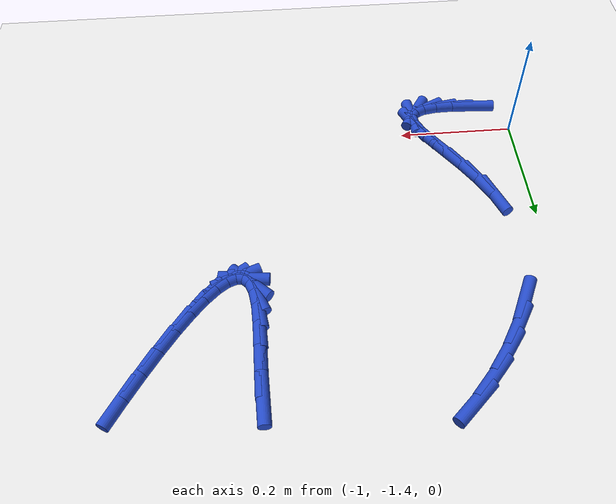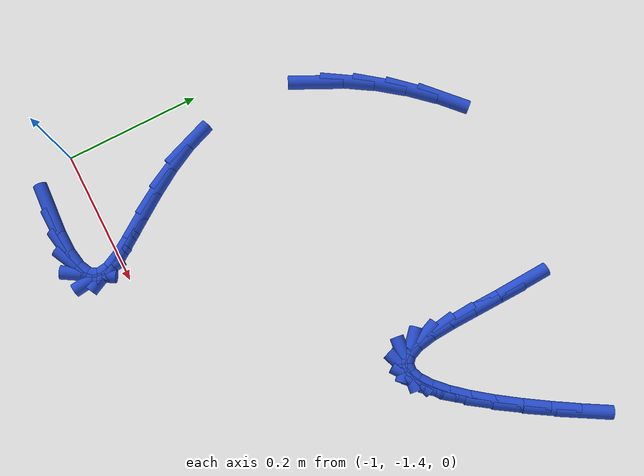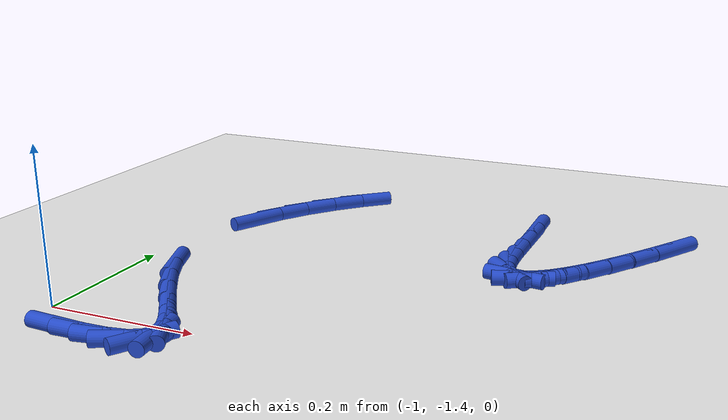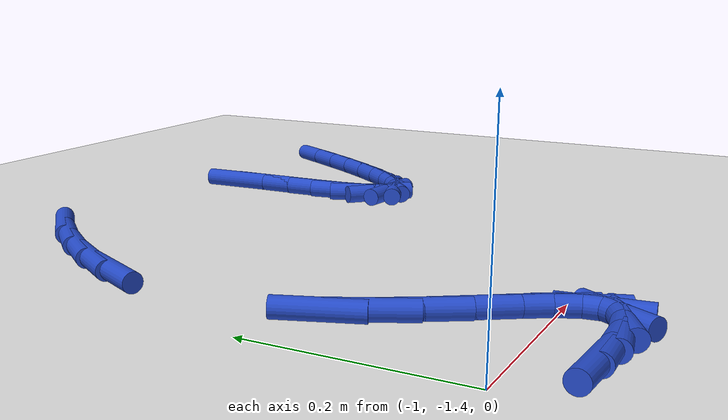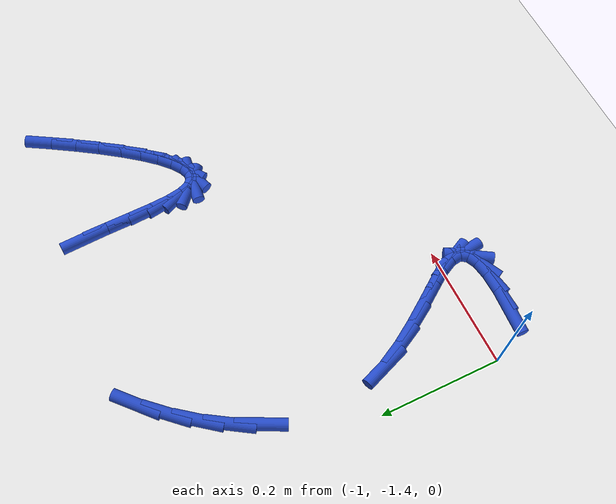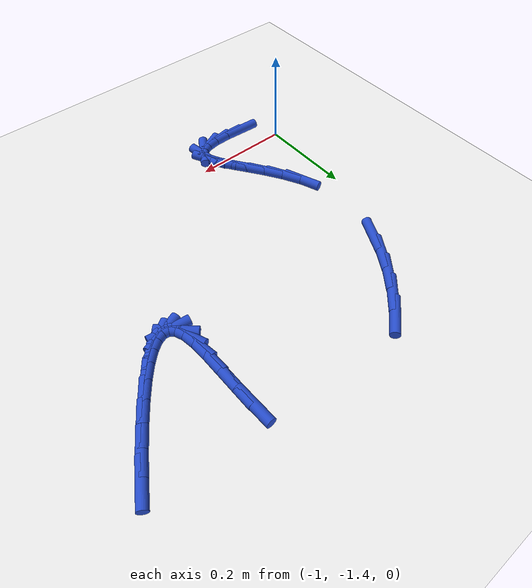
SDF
<sdf version="1.6">
 <world name="default">
  <model name="ground_plane">
   <static>1</static>
   <link name="link">
    <collision name="collision">
     <geometry><plane><normal>0 0 1</normal><size>100 100</size></plane></geometry>
     <surface><friction><ode><mu>100</mu><mu2>50</mu2></ode></friction></surface>
    </collision>
    <visual name="visual">
     <cast_shadows>0</cast_shadows>
     <geometry><plane><normal>0 0 1</normal><size>100 100</size></plane></geometry>
     <material>
      <script><uri>file://media/materials/scripts/gazebo.material</uri><name>Gazebo/WhiteGlow</name></script>
     </material>
    </visual>
   </link>
  </model>
  <model name="line">
   <link name="link_207">
    <pose>-0.9410554550008855 -1.4574055272270798 0.01 0 1.57 -0.06492393238056192</pose>
    <collision name="collision">
     <geometry><cylinder><radius>0.01</radius><length>0.08</length></cylinder></geometry>
    </collision>
    <visual name="visual">
     <material>
      <script><name>Gazebo/Blue</name><uri>file://media/materials/scripts/gazebo.material</uri></script>
     </material>
     <geometry><cylinder><radius>0.01</radius><length>0.08</length></cylinder></geometry>
    </visual>
   </link>
   <link name="link_208">
    <pose>-0.9035816386006766 -1.4598418989086477 0.01 0 1.57 0.019446015192767736</pose>
    <collision name="collision">
     <geometry><cylinder><radius>0.01</radius><length>0.08</length></cylinder></geometry>
    </collision>
    <visual name="visual">
     <material>
      <script><name>Gazebo/Blue</name><uri>file://media/materials/scripts/gazebo.material</uri></script>
     </material>
     <geometry><cylinder><radius>0.01</radius><length>0.08</length></cylinder></geometry>
    </visual>
   </link>
   <link name="link_209">
    <pose>-0.8722243121046517 -1.4592320469879356 0.01 0 1.57 0.16570280818655508</pose>
    <collision name="collision">
     <geometry><cylinder><radius>0.01</radius><length>0.08</length></cylinder></geometry>
    </collision>
    <visual name="visual">
     <material>
      <script><name>Gazebo/Blue</name><uri>file://media/materials/scripts/gazebo.material</uri></script>
     </material>
     <geometry><cylinder><radius>0.01</radius><length>0.08</length></cylinder></geometry>
    </visual>
   </link>
   <link name="link_210">
    <pose>-0.8479094972247763 -1.4551657287073856 0.01 0 1.57 0.45182736505447607</pose>
    <collision name="collision">
     <geometry><cylinder><radius>0.01</radius><length>0.08</length></cylinder></geometry>
    </collision>
    <visual name="visual">
     <material>
      <script><name>Gazebo/Blue</name><uri>file://media/materials/scripts/gazebo.material</uri></script>
     </material>
     <geometry><cylinder><radius>0.01</radius><length>0.08</length></cylinder></geometry>
    </visual>
   </link>
   <link name="link_211">
    <pose>-0.8315632156730178 -1.4472327013094397 0.01 0 1.57 1.022839121822314</pose>
    <collision name="collision">
     <geometry><cylinder><radius>0.01</radius><length>0.08</length></cylinder></geometry>
    </collision>
    <visual name="visual">
     <material>
      <script><name>Gazebo/Blue</name><uri>file://media/materials/scripts/gazebo.material</uri></script>
     </material>
     <geometry><cylinder><radius>0.01</radius><length>0.08</length></cylinder></geometry>
    </visual>
   </link>
   <link name="link_212">
    <pose>-0.8241114891613432 -1.4350227220365392 0.01 0 1.57 -1.4480246275113848</pose>
    <collision name="collision">
     <geometry><cylinder><radius>0.01</radius><length>0.08</length></cylinder></geometry>
    </collision>
    <visual name="visual">
     <material>
      <script><name>Gazebo/Blue</name><uri>file://media/materials/scripts/gazebo.material</uri></script>
     </material>
     <geometry><cylinder><radius>0.01</radius><length>0.08</length></cylinder></geometry>
    </visual>
   </link>
   <link name="link_213">
    <pose>-0.8261868025138148 -1.4182038958596535 0.01 0 1.57 -1.120143383468311</pose>
    <collision name="collision">
     <geometry><cylinder><radius>0.01</radius><length>0.08</length></cylinder></geometry>
    </collision>
    <visual name="visual">
     <material>
      <script><name>Gazebo/Blue</name><uri>file://media/materials/scripts/gazebo.material</uri></script>
     </material>
     <geometry><cylinder><radius>0.01</radius><length>0.08</length></cylinder></geometry>
    </visual>
   </link>
   <link name="link_214">
    <pose>-0.8364623665011199 -1.3969672762375551 0.01 0 1.57 -0.9962374554535492</pose>
    <collision name="collision">
     <geometry><cylinder><radius>0.01</radius><length>0.08</length></cylinder></geometry>
    </collision>
    <visual name="visual">
     <material>
      <script><name>Gazebo/Blue</name><uri>file://media/materials/scripts/gazebo.material</uri></script>
     </material>
     <geometry><cylinder><radius>0.01</radius><length>0.08</length></cylinder></geometry>
    </visual>
   </link>
   <link name="link_215">
    <pose>-0.8528092194343116 -1.371718023927582 0.01 0 1.57 -0.958037921880406</pose>
    <collision name="collision">
     <geometry><cylinder><radius>0.01</radius><length>0.08</length></cylinder></geometry>
    </collision>
    <visual name="visual">
     <material>
      <script><name>Gazebo/Blue</name><uri>file://media/materials/scripts/gazebo.material</uri></script>
     </material>
     <geometry><cylinder><radius>0.01</radius><length>0.08</length></cylinder></geometry>
    </visual>
   </link>
   <link name="link_216">
    <pose>-0.8730959859863912 -1.3428619439095444 0.01 0 1.57 -0.9673227479168287</pose>
    <collision name="collision">
     <geometry><cylinder><radius>0.01</radius><length>0.08</length></cylinder></geometry>
    </collision>
    <visual name="visual">
     <material>
      <script><name>Gazebo/Blue</name><uri>file://media/materials/scripts/gazebo.material</uri></script>
     </material>
     <geometry><cylinder><radius>0.01</radius><length>0.08</length></cylinder></geometry>
    </visual>
   </link>
   <link name="link_217">
    <pose>-0.8951912908303603 -1.31080484116325 0.01 0 1.57 -1.012408164492352</pose>
    <collision name="collision">
     <geometry><cylinder><radius>0.01</radius><length>0.08</length></cylinder></geometry>
    </collision>
    <visual name="visual">
     <material>
      <script><name>Gazebo/Blue</name><uri>file://media/materials/scripts/gazebo.material</uri></script>
     </material>
     <geometry><cylinder><radius>0.01</radius><length>0.08</length></cylinder></geometry>
    </visual>
   </link>
   <link name="link_218">
    <pose>-0.9169637586392188 -1.2759525206685105 0.01 0 1.57 -1.0922803889467954</pose>
    <collision name="collision">
     <geometry><cylinder><radius>0.01</radius><length>0.08</length></cylinder></geometry>
    </collision>
    <visual name="visual">
     <material>
      <script><name>Gazebo/Blue</name><uri>file://media/materials/scripts/gazebo.material</uri></script>
     </material>
     <geometry><cylinder><radius>0.01</radius><length>0.08</length></cylinder></geometry>
    </visual>
   </link>
   <link name="link_219">
    <pose>-0.9362820140859685 -1.2387107874051335 0.01 0 1.57 -1.211508007057259</pose>
    <collision name="collision">
     <geometry><cylinder><radius>0.01</radius><length>0.08</length></cylinder></geometry>
    </collision>
    <visual name="visual">
     <material>
      <script><name>Gazebo/Blue</name><uri>file://media/materials/scripts/gazebo.material</uri></script>
     </material>
     <geometry><cylinder><radius>0.01</radius><length>0.08</length></cylinder></geometry>
    </visual>
   </link>
   <link name="link_224">
    <pose>-0.9363469393919531 -1.0321440991894704 0.01 0 1.57 1.1124272955885064</pose>
    <collision name="collision">
     <geometry><cylinder><radius>0.01</radius><length>0.08</length></cylinder></geometry>
    </collision>
    <visual name="visual">
     <material>
      <script><name>Gazebo/Blue</name><uri>file://media/materials/scripts/gazebo.material</uri></script>
     </material>
     <geometry><cylinder><radius>0.01</radius><length>0.08</length></cylinder></geometry>
    </visual>
   </link>
   <link name="link_225">
    <pose>-0.9159405386244283 -0.9907869620937508 0.01 0 1.57 1.0056017645374538</pose>
    <collision name="collision">
     <geometry><cylinder><radius>0.01</radius><length>0.08</length></cylinder></geometry>
    </collision>
    <visual name="visual">
     <material>
      <script><name>Gazebo/Blue</name><uri>file://media/materials/scripts/gazebo.material</uri></script>
     </material>
     <geometry><cylinder><radius>0.01</radius><length>0.08</length></cylinder></geometry>
    </visual>
   </link>
   <link name="link_226">
    <pose>-0.8906804276216432 -0.9509576839460226 0.01 0 1.57 0.9113506363325964</pose>
    <collision name="collision">
     <geometry><cylinder><radius>0.01</radius><length>0.08</length></cylinder></geometry>
    </collision>
    <visual name="visual">
     <material>
      <script><name>Gazebo/Blue</name><uri>file://media/materials/scripts/gazebo.material</uri></script>
     </material>
     <geometry><cylinder><radius>0.01</radius><length>0.08</length></cylinder></geometry>
    </visual>
   </link>
   <link name="link_227">
    <pose>-0.8615079344666375 -0.9133262990830763 0.01 0 1.57 0.8245356531881787</pose>
    <collision name="collision">
     <geometry><cylinder><radius>0.01</radius><length>0.08</length></cylinder></geometry>
    </collision>
    <visual name="visual">
     <material>
      <script><name>Gazebo/Blue</name><uri>file://media/materials/scripts/gazebo.material</uri></script>
     </material>
     <geometry><cylinder><radius>0.01</radius><length>0.08</length></cylinder></geometry>
    </visual>
   </link>
   <link name="link_228">
    <pose>-0.8293643872424482 -0.8785628418416991 0.01 0 1.57 0.7403547453955399</pose>
    <collision name="collision">
     <geometry><cylinder><radius>0.01</radius><length>0.08</length></cylinder></geometry>
    </collision>
    <visual name="visual">
     <material>
      <script><name>Gazebo/Blue</name><uri>file://media/materials/scripts/gazebo.material</uri></script>
     </material>
     <geometry><cylinder><radius>0.01</radius><length>0.08</length></cylinder></geometry>
    </visual>
   </link>
   <link name="link_240">
    <pose>-0.5394590562288606 -0.9078742107908867 0.01 0 1.57 -1.5270518121716936</pose>
    <collision name="collision">
     <geometry><cylinder><radius>0.01</radius><length>0.08</length></cylinder></geometry>
    </collision>
    <visual name="visual">
     <material>
      <script><name>Gazebo/Blue</name><uri>file://media/materials/scripts/gazebo.material</uri></script>
     </material>
     <geometry><cylinder><radius>0.01</radius><length>0.08</length></cylinder></geometry>
    </visual>
   </link>
   <link name="link_241">
    <pose>-0.5377003247783884 -0.9480531794347984 0.01 0 1.57 -1.5522610565175115</pose>
    <collision name="collision">
     <geometry><cylinder><radius>0.01</radius><length>0.08</length></cylinder></geometry>
    </collision>
    <visual name="visual">
     <material>
      <script><name>Gazebo/Blue</name><uri>file://media/materials/scripts/gazebo.material</uri></script>
     </material>
     <geometry><cylinder><radius>0.01</radius><length>0.08</length></cylinder></geometry>
    </visual>
   </link>
   <link name="link_242">
    <pose>-0.5369667668169635 -0.9876249764674117 0.01 0 1.57 -1.5495165181501218</pose>
    <collision name="collision">
     <geometry><cylinder><radius>0.01</radius><length>0.08</length></cylinder></geometry>
    </collision>
    <visual name="visual">
     <material>
      <script><name>Gazebo/Blue</name><uri>file://media/materials/scripts/gazebo.material</uri></script>
     </material>
     <geometry><cylinder><radius>0.01</radius><length>0.08</length></cylinder></geometry>
    </visual>
   </link>
   <link name="link_243">
    <pose>-0.5361833040703283 -1.0244366084513283 0.01 0 1.57 -1.5110388088237043</pose>
    <collision name="collision">
     <geometry><cylinder><radius>0.01</radius><length>0.08</length></cylinder></geometry>
    </collision>
    <visual name="visual">
     <material>
      <script><name>Gazebo/Blue</name><uri>file://media/materials/scripts/gazebo.material</uri></script>
     </material>
     <geometry><cylinder><radius>0.01</radius><length>0.08</length></cylinder></geometry>
    </visual>
   </link>
   <link name="link_244">
    <pose>-0.5342748582642249 -1.056335081949147 0.01 0 1.57 -1.4072436370460413</pose>
    <collision name="collision">
     <geometry><cylinder><radius>0.01</radius><length>0.08</length></cylinder></geometry>
    </collision>
    <visual name="visual">
     <material>
      <script><name>Gazebo/Blue</name><uri>file://media/materials/scripts/gazebo.material</uri></script>
     </material>
     <geometry><cylinder><radius>0.01</radius><length>0.08</length></cylinder></geometry>
    </visual>
   </link>
   <link name="link_245">
    <pose>-0.5301741839691086 -1.08118362031752 0.01 0 1.57 -1.1786709238104998</pose>
    <collision name="collision">
     <geometry><cylinder><radius>0.01</radius><length>0.08</length></cylinder></geometry>
    </collision>
    <visual name="visual">
     <material>
      <script><name>Gazebo/Blue</name><uri>file://media/materials/scripts/gazebo.material</uri></script>
     </material>
     <geometry><cylinder><radius>0.01</radius><length>0.08</length></cylinder></geometry>
    </visual>
   </link>
   <link name="link_246">
    <pose>-0.5232899225184525 -1.0978307029611756 0.01 0 1.57 -0.7478161696009491</pose>
    <collision name="collision">
     <geometry><cylinder><radius>0.01</radius><length>0.08</length></cylinder></geometry>
    </collision>
    <visual name="visual">
     <material>
      <script><name>Gazebo/Blue</name><uri>file://media/materials/scripts/gazebo.material</uri></script>
     </material>
     <geometry><cylinder><radius>0.01</radius><length>0.08</length></cylinder></geometry>
    </visual>
   </link>
   <link name="link_247">
    <pose>-0.5137717617358806 -1.1066590409404915 0.01 0 1.57 -0.12706214487578724</pose>
    <collision name="collision">
     <geometry><cylinder><radius>0.01</radius><length>0.08</length></cylinder></geometry>
    </collision>
    <visual name="visual">
     <material>
      <script><name>Gazebo/Blue</name><uri>file://media/materials/scripts/gazebo.material</uri></script>
     </material>
     <geometry><cylinder><radius>0.01</radius><length>0.08</length></cylinder></geometry>
    </visual>
   </link>
   <link name="link_248">
    <pose>-0.5018335370181953 -1.1081841537680979 0.01 0 1.57 0.3561911157769619</pose>
    <collision name="collision">
     <geometry><cylinder><radius>0.01</radius><length>0.08</length></cylinder></geometry>
    </collision>
    <visual name="visual">
     <material>
      <script><name>Gazebo/Blue</name><uri>file://media/materials/scripts/gazebo.material</uri></script>
     </material>
     <geometry><cylinder><radius>0.01</radius><length>0.08</length></cylinder></geometry>
    </visual>
   </link>
   <link name="link_249">
    <pose>-0.48768908376219916 -1.1029215609566256 0.01 0 1.57 0.6205965524076255</pose>
    <collision name="collision">
     <geometry><cylinder><radius>0.01</radius><length>0.08</length></cylinder></geometry>
    </collision>
    <visual name="visual">
     <material>
      <script><name>Gazebo/Blue</name><uri>file://media/materials/scripts/gazebo.material</uri></script>
     </material>
     <geometry><cylinder><radius>0.01</radius><length>0.08</length></cylinder></geometry>
    </visual>
   </link>
   <link name="link_250">
    <pose>-0.471552237364695 -1.0913867820187055 0.01 0 1.57 0.7676773709563717</pose>
    <collision name="collision">
     <geometry><cylinder><radius>0.01</radius><length>0.08</length></cylinder></geometry>
    </collision>
    <visual name="visual">
     <material>
      <script><name>Gazebo/Blue</name><uri>file://media/materials/scripts/gazebo.material</uri></script>
     </material>
     <geometry><cylinder><radius>0.01</radius><length>0.08</length></cylinder></geometry>
    </visual>
   </link>
   <link name="link_251">
    <pose>-0.45363683322248527 -1.074095336466968 0.01 0 1.57 0.8579264832232156</pose>
    <collision name="collision">
     <geometry><cylinder><radius>0.01</radius><length>0.08</length></cylinder></geometry>
    </collision>
    <visual name="visual">
     <material>
      <script><name>Gazebo/Blue</name><uri>file://media/materials/scripts/gazebo.material</uri></script>
     </material>
     <geometry><cylinder><radius>0.01</radius><length>0.08</length></cylinder></geometry>
    </visual>
   </link>
   <link name="link_252">
    <pose>-0.4341567067323722 -1.0515627438140427 0.01 0 1.57 0.9182624672085994</pose>
    <collision name="collision">
     <geometry><cylinder><radius>0.01</radius><length>0.08</length></cylinder></geometry>
    </collision>
    <visual name="visual">
     <material>
      <script><name>Gazebo/Blue</name><uri>file://media/materials/scripts/gazebo.material</uri></script>
     </material>
     <geometry><cylinder><radius>0.01</radius><length>0.08</length></cylinder></geometry>
    </visual>
   </link>
   <link name="link_253">
    <pose>-0.41332569329115953 -1.024304523572562 0.01 0 1.57 0.9613461346734871</pose>
    <collision name="collision">
     <geometry><cylinder><radius>0.01</radius><length>0.08</length></cylinder></geometry>
    </collision>
    <visual name="visual">
     <material>
      <script><name>Gazebo/Blue</name><uri>file://media/materials/scripts/gazebo.material</uri></script>
     </material>
     <geometry><cylinder><radius>0.01</radius><length>0.08</length></cylinder></geometry>
    </visual>
   </link>
   <link name="link_254">
    <pose>-0.39135762829564924 -0.9928361952551551 0.01 0 1.57 0.9937140002100177</pose>
    <collision name="collision">
     <geometry><cylinder><radius>0.01</radius><length>0.08</length></cylinder></geometry>
    </collision>
    <visual name="visual">
     <material>
      <script><name>Gazebo/Blue</name><uri>file://media/materials/scripts/gazebo.material</uri></script>
     </material>
     <geometry><cylinder><radius>0.01</radius><length>0.08</length></cylinder></geometry>
    </visual>
   </link>
   <link name="link_255">
    <pose>-0.368466347142644 -0.9576732783744532 0.01 0 1.57 1.0190355351588036</pose>
    <collision name="collision">
     <geometry><cylinder><radius>0.01</radius><length>0.08</length></cylinder></geometry>
    </collision>
    <visual name="visual">
     <material>
      <script><name>Gazebo/Blue</name><uri>file://media/materials/scripts/gazebo.material</uri></script>
     </material>
     <geometry><cylinder><radius>0.01</radius><length>0.08</length></cylinder></geometry>
    </visual>
   </link>
   <link name="link_256">
    <pose>-0.3448656852289466 -0.919331292443087 0.01 0 1.57 1.0395198136995252</pose>
    <collision name="collision">
     <geometry><cylinder><radius>0.01</radius><length>0.08</length></cylinder></geometry>
    </collision>
    <visual name="visual">
     <material>
      <script><name>Gazebo/Blue</name><uri>file://media/materials/scripts/gazebo.material</uri></script>
     </material>
     <geometry><cylinder><radius>0.01</radius><length>0.08</length></cylinder></geometry>
    </visual>
   </link>
  </model>
 </world>
</sdf>
